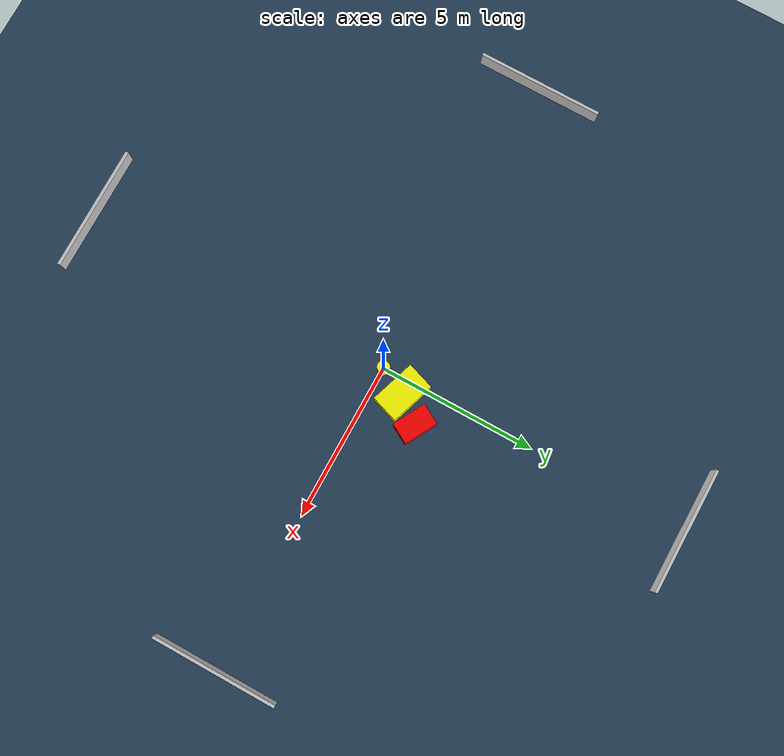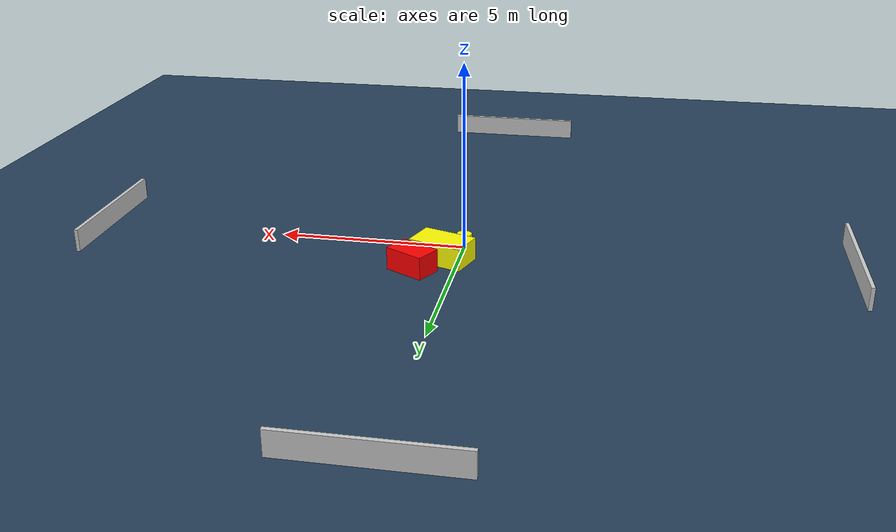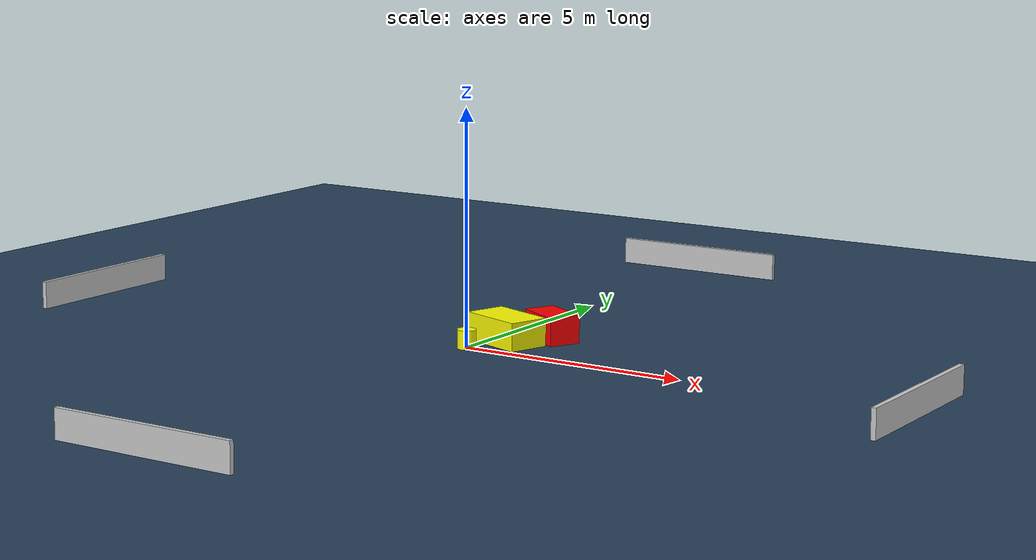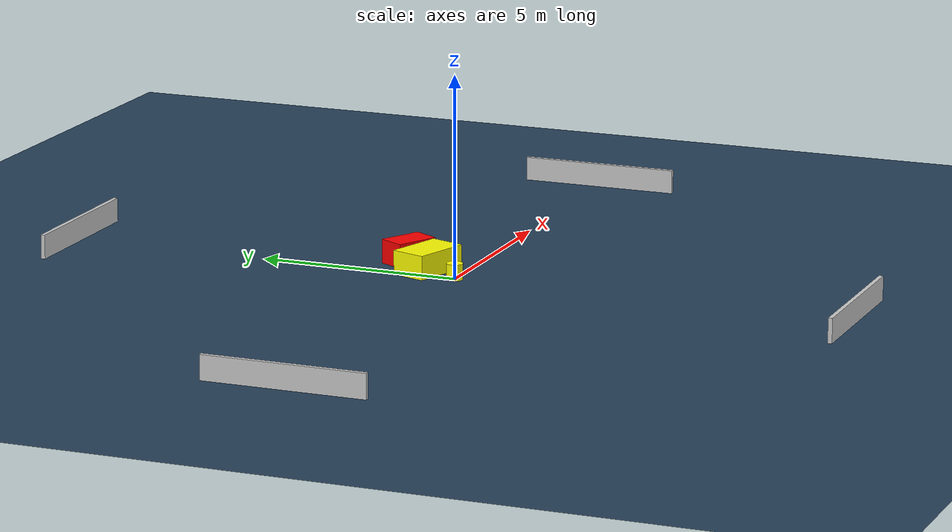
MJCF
<?xml version="1.0" ?>
<mujoco model="generated_environment">
  <option timestep="0.01" integrator="RK4" cone="elliptic"/>
  <default>
    <geom density="1"/>
  </default>
  <asset>
    <texture builtin="gradient" height="3072" name="skybox" rgb1="0.3 0.5 0.7" rgb2="0 0 0" type="skybox" width="512"/>
    <texture builtin="checker" height="300" name="groundplane" rgb1="0.2 0.3 0.4" rgb2="0.1 0.2 0.3" type="2d" width="300"/>
    <material name="groundplane" reflectance="0.2" texrepeat="5 5" texture="groundplane"/>
  </asset>
  <worldbody>
    <light dir="0 0 -1" directional="true" pos="0 0 1.5"/>
    <geom condim="3" friction="0.5 0.005 0.001" material="groundplane" name="floor" pos="0 0 0" size="0 0 0.05" type="plane"/>
    <body name="walls">
      <geom name="wall_1" condim="4" pos="-10.0 0.0 0.3" rgba="0.800000011920929 0.800000011920929 0.800000011920929 1.0" size="0.05 2.0 0.3" type="box"/>
      <geom name="wall_2" condim="4" pos="10.0 0.0 0.3" rgba="0.800000011920929 0.800000011920929 0.800000011920929 1.0" size="0.05 2.0 0.3" type="box"/>
      <geom name="wall_3" condim="4" pos="0.0 -10.0 0.3" rgba="0.800000011920929 0.800000011920929 0.800000011920929 1.0" size="2.0 0.05 0.3" type="box"/>
      <geom name="wall_4" condim="4" pos="0.0 10.0 0.3" rgba="0.800000011920929 0.800000011920929 0.800000011920929 1.0" size="2.0 0.05 0.3" type="box"/>
    </body>
    <body name="robot">
      <joint name="joint_x" type="slide" pos="0 0 0" axis="1 0 0"/>
      <joint name="joint_y" type="slide" pos="0 0 0" axis="0 1 0"/>
      <geom name="robot" type="cylinder" pos="0.0 0.0 0.2" size="0.2 0.2 0.0" mass="5.0" friction="1.0 0.005 0.0001" condim="4" rgba="1.0 1.0 0.0 1.0"/>
    </body>
    <body name="obstacle_1_movable">
      <geom name="obstacle_1_movable" condim="4" pos="0.42376022113681544 0.8706311815324725 0.3" euler="0 0 251.50095053830017" friction="0.0 0.005 0.001" rgba="1.0 1.0 0.0 1.0" size="0.44717568779753125 0.7343961733897639 0.3" type="box" mass="0.1"/>
      <joint type="free"/>
    </body>
    <body name="obstacle_2_static">
      <geom name="obstacle_2_static" condim="4" pos="1.0582298784804978 1.6313224517383882 0.3" euler="0 0 241.1593892845906" friction="0.0 0.005 0.001" rgba="1.0 0.0 0.0 1.0" size="0.346385001471081 0.5503412292750531 0.3" type="box"/>
    </body>
  </worldbody>
  <actuator>
    <motor name="actuator_x" joint="joint_x" gear="1" ctrlrange="-1 1"/>
    <motor name="actuator_y" joint="joint_y" gear="1" ctrlrange="-1 1"/>
  </actuator>
</mujoco>
